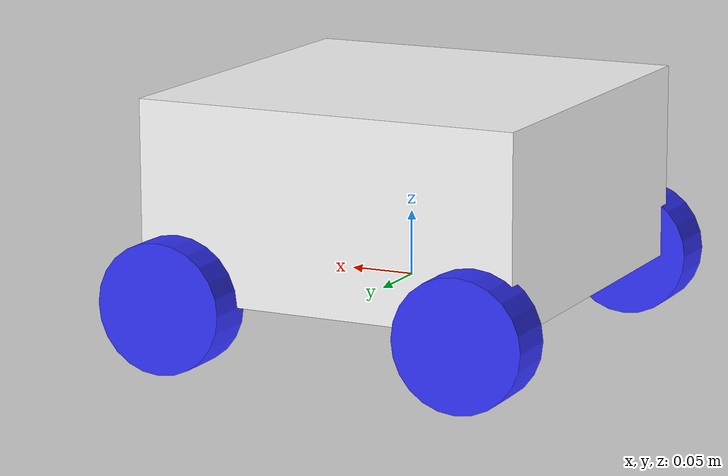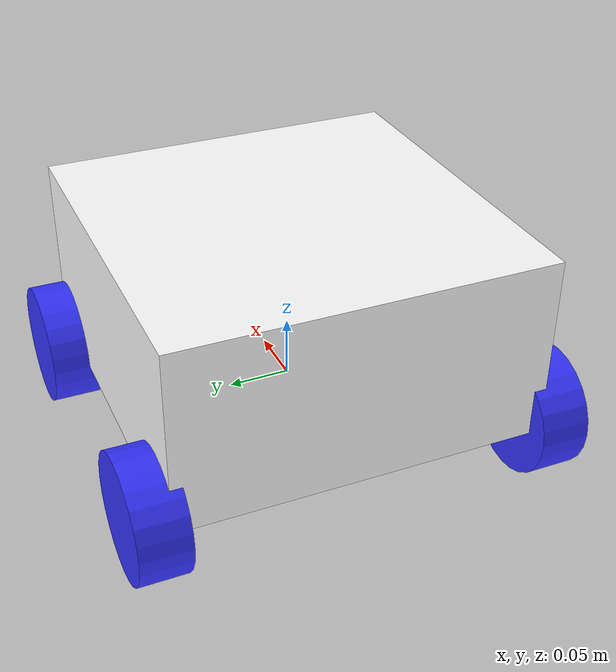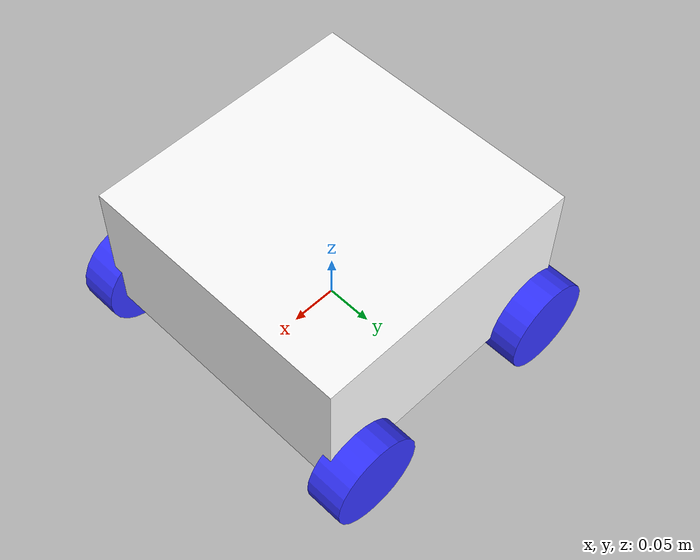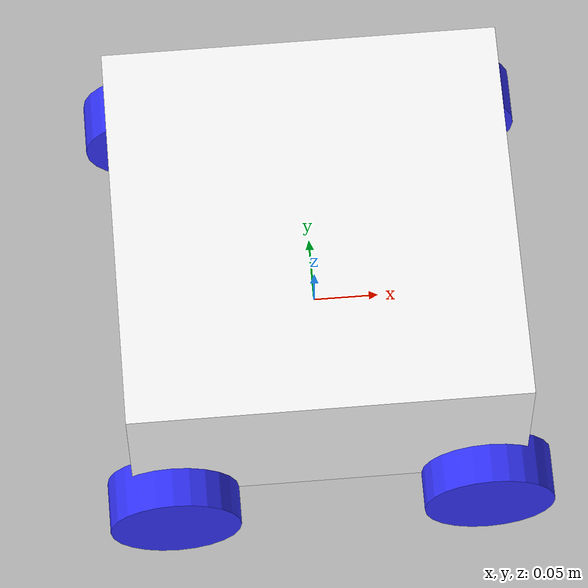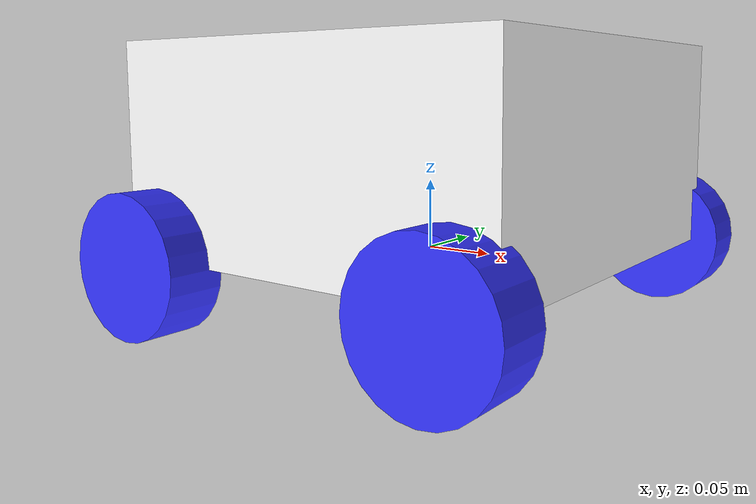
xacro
<?xml version="1.0"?>

<robot name="my_bot" xmlns:xacro="http://www.ros.org/wiki/xacro">

  <xacro:include filename="$(find my_bot)/description/inertial_macros.xacro"/>

  <!-- MATERIALS -->
  <material name="white">
    <color rgba="1 1 1 1"/>
  </material>

  <material name="blue">
    <color rgba="0.2 0.2 1 1"/>
  </material>

  <material name="black">
    <color rgba="0 0 0 1"/>
  </material>
  <!-- BASE LINK -->
  <link name="base_link">
  </link>

  <!-- CHASSIS -->
  <joint name="chassis_joint" type="fixed">
    <parent link="base_link"/>
    <child link="chassis"/>
    <origin xyz="0 0 0"/>
  </joint>

  <link name="chassis">
    <visual>
      <origin xyz="0 0 0.075"/>
      <geometry>
        <box size="0.30 0.30 0.15"/>
      </geometry>
      <material name="white"/>
    </visual>
  <collision>
      <origin xyz="0 0 0.075"/>
      <geometry>
        <box size="0.30 0.30 0.15"/>
      </geometry>
    </collision>
   <xacro:inertial_box mass="0.5" x="0.3" y="0.3" z="0.15"/>
   </link>

   <gazebo reference="chassis">
        <material>Gazebo/White</material>
    </gazebo>

  <!-- ===== LEFT FRONT WHEEL ===== -->
  <joint name="left_front_wheel_joint" type="continuous">
    <parent link="base_link"/>
    <child link="left_front_wheel"/>
    <origin xyz="0.12 0.16 0" rpy="-${pi/2} 0 0"/>
    <axis xyz="0 0 1"/>
 </joint>

  <link name="left_front_wheel">
    <visual>
      <geometry>
        <cylinder radius="0.05" length="0.04"/>
      </geometry>
      <material name="blue"/>
    </visual>
  <collision>
      <geometry>
        <cylinder radius="0.05" length="0.04"/>
      </geometry>
    </collision>
  <xacro:inertial_cylinder mass="0.1" length="0.04" radius="0.05"/>
   </link>

   <gazebo reference="left_front_wheel">
        <material>Gazebo/Blue</material>
  </gazebo>
 <!-- ===== LEFT REAR WHEEL ===== -->
  <joint name="left_rear_wheel_joint" type="continuous">
    <parent link="base_link"/>
    <child link="left_rear_wheel"/>
    <origin xyz="-0.12 0.16 0" rpy="-${pi/2} 0 0"/>
    <axis xyz="0 0 1"/>

   <mimic joint="left_front_wheel_joint" multiplier="1.0"/>
  </joint>

  <link name="left_rear_wheel">
    <visual>
      <geometry>
        <cylinder radius="0.05" length="0.04"/>
      </geometry>
      <material name="blue"/>
    </visual>
    <collision>
      <geometry>
        <cylinder radius="0.05" length="0.04"/>
   </geometry>
    </collision>
 <xacro:inertial_cylinder mass="0.1" length="0.04" radius="0.05"/>

     </link>

   <gazebo reference="left_rear_wheel">
        <material>Gazebo/Blue</material>

    </gazebo>

  <!-- ===== RIGHT FRONT WHEEL ===== -->
  <joint name="right_front_wheel_joint" type="continuous">
    <parent link="base_link"/>
    <child link="right_front_wheel"/>
    <origin xyz="0.12 -0.16 0" rpy="${pi/2} 0 0"/>
    <axis xyz="0 0 1"/>
  </joint>
 <link name="right_front_wheel">
    <visual>
      <geometry>
        <cylinder radius="0.05" length="0.04"/>
      </geometry>
      <material name="blue"/>
    </visual>
   <collision>
      <geometry>
        <cylinder radius="0.05" length="0.04"/>
      </geometry>
    </collision>
  <xacro:inertial_cylinder mass="0.1" length="0.04" radius="0.05"/>

    </link>

   <gazebo reference="right_front_wheel">
        <material>Gazebo/Blue</material>
</gazebo>

 <!-- ===== RIGHT REAR WHEEL ===== -->
  <joint name="right_rear_wheel_joint" type="continuous">
    <parent link="base_link"/>
    <child link="right_rear_wheel"/>
    <origin xyz="-0.12 -0.16 0" rpy="${pi/2} 0 0"/>
    <axis xyz="0 0 1"/>

    <mimic joint="right_front_wheel_joint" multiplier="1.0"/>
  </joint>

  <link name="right_rear_wheel">
    <visual>
      <geometry>
        <cylinder radius="0.05" length="0.04"/>
      </geometry>
      <material name="blue"/>
    </visual>
   <collision>
      <geometry>
 <cylinder radius="0.05" length="0.04"/>
      </geometry>
    </collision>
  <xacro:inertial_cylinder mass="0.1" length="0.04" radius="0.05"/>

  </link>

  <gazebo reference="right_rear_wheel">
        <material>Gazebo/Blue</material>

    </gazebo>

</robot>
